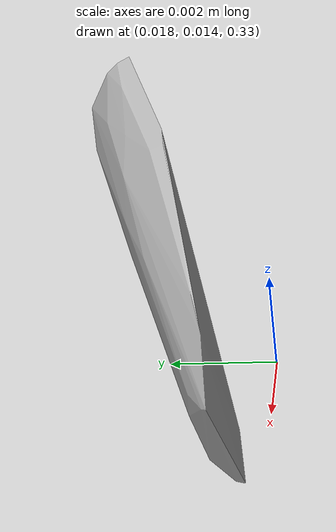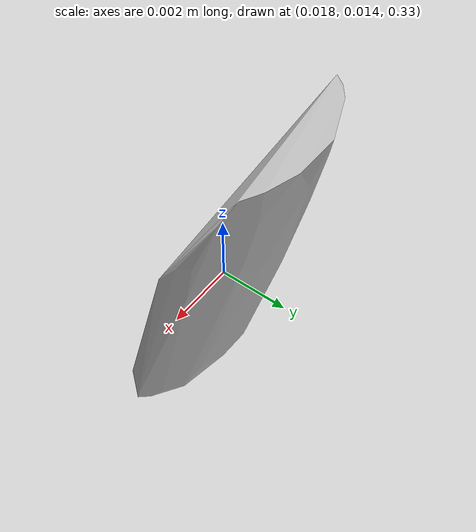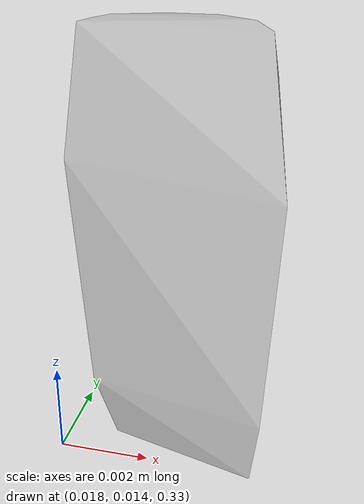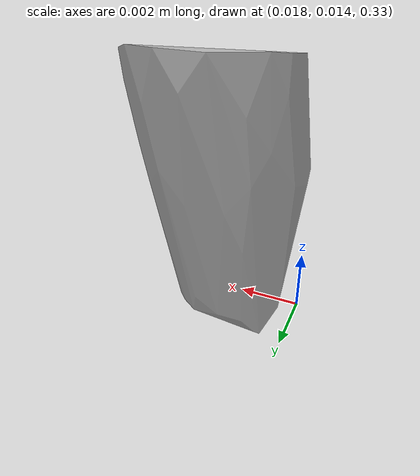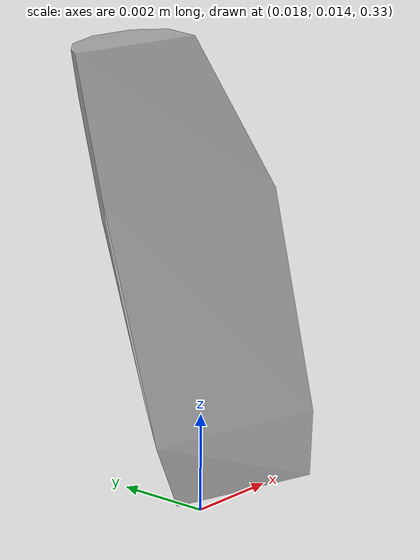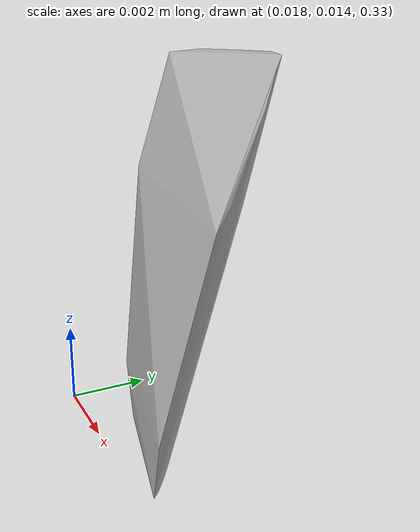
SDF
<?xml version="1.0"?>
<sdf version="1.7">
  <model name="vascular_partexport007">
    <link name="vascular_partexport007_body">
      <visual name="vascular_partexport007_visual">
        <geometry>
          <mesh>
            <uri>vascular_partexport007.obj</uri>
          </mesh>
        </geometry>
      </visual>
      <collision name="vascular_partexport007_collision">
        <geometry>
          <mesh>
            <uri>vascular_partexport007.obj</uri>
          </mesh>
        </geometry>
      </collision>
    </link>
    <frame name="vascular_partexport007_center">
      <pose relative_to="vascular_partexport007_body">0 0 0 0 0 0</pose>
    </frame>
  </model>
</sdf>
